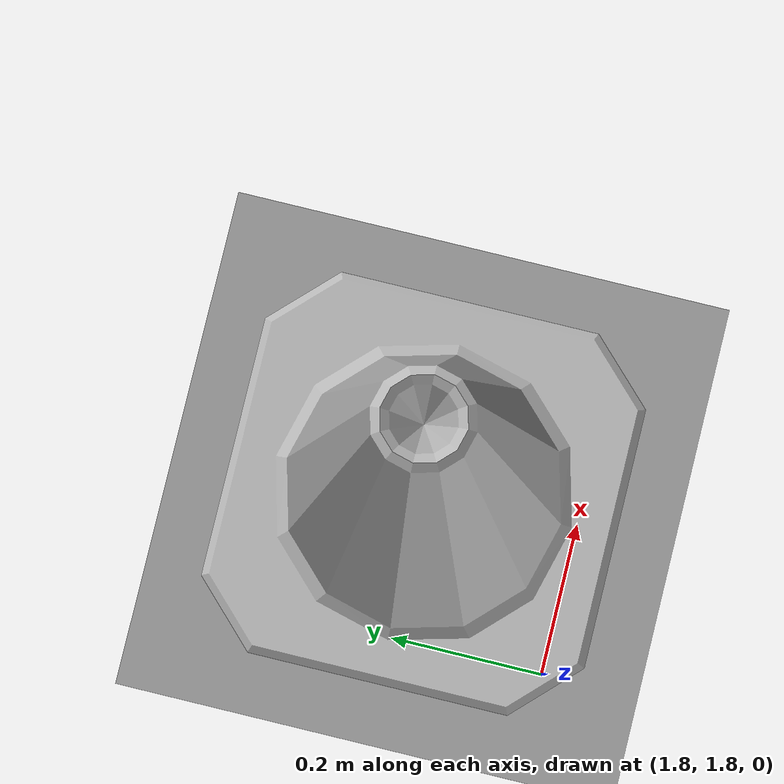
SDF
<sdf version="1.6">
 <world name="default">
  <light name="sun" type="directional">
   <pose>0 0 10 0 -0 0</pose>
   <diffuse>0.8 0.8 0.8 1</diffuse>
   <specular>0.2 0.2 0.2 1</specular>
   <attenuation>
    <range>1000</range>
    <constant>0.9</constant>
    <linear>0.01</linear>
    <quadratic>0.001</quadratic>
   </attenuation>
   <direction>0.5 0.1 -0.9</direction>
  </light>
  <scene><ambient>0.4 0.4 0.4 1</ambient><background>0.7 0.7 0.7 1</background><shadows>1</shadows></scene>
  <physics name="default_physics" default="0" type="ode">
   <max_step_size>0.01</max_step_size>
   <real_time_factor>1</real_time_factor>
   <real_time_update_rate>100</real_time_update_rate>
  </physics>
  <model name="ground_plane_0">
   <static>1</static>
   <link name="link">
    <collision name="collision">
     <geometry><plane><normal>0 0 1</normal><size>100 100</size></plane></geometry>
     <surface><friction><ode><mu>100</mu><mu2>50</mu2></ode></friction></surface>
    </collision>
    <visual name="visual">
     <cast_shadows>0</cast_shadows>
     <geometry><plane><normal>0 0 1</normal><size>100 100</size></plane></geometry>
     <material>
      <script><uri>file://media/materials/scripts/gazebo.material</uri><name>Gazebo/Grey</name></script>
     </material>
    </visual>
    <velocity_decay><linear>0</linear><angular>0</angular></velocity_decay>
   </link>
   <pose>0.497681 0 0 0 -0 0</pose>
  </model>
  <spherical_coordinates>
   <surface_model>EARTH_WGS84</surface_model>
   <latitude_deg>0</latitude_deg>
   <longitude_deg>0</longitude_deg>
   <elevation>0</elevation>
   <heading_deg>0</heading_deg>
  </spherical_coordinates>
  <model name="Construction Cone_5">
   <link name="link">
    <collision name="collision">
     <geometry>
      <mesh><scale>10 10 10</scale><uri>model://construction_cone/meshes/construction_cone.dae</uri></mesh>
     </geometry>
    </collision>
    <visual name="visual">
     <geometry>
      <mesh><scale>10 10 10</scale><uri>model://construction_cone/meshes/construction_cone.dae</uri></mesh>
     </geometry>
    </visual>
    <velocity_decay><linear>0</linear><angular>0</angular></velocity_decay>
    <inertial>
     <inertia><ixx>1</ixx><ixy>0</ixy><ixz>0</ixz><iyy>1</iyy><iyz>0</iyz><izz>1</izz></inertia>
     <mass>1</mass>
    </inertial>
   </link>
   <pose>1.98994 2.00266 0 0 -0 0</pose>
   <static>0</static>
  </model>
  <gravity>0 0 -9.8</gravity>
  <magnetic_field>6e-06 2.3e-05 -4.2e-05</magnetic_field>
  <atmosphere type="adiabatic"/>
 </world>
</sdf>
